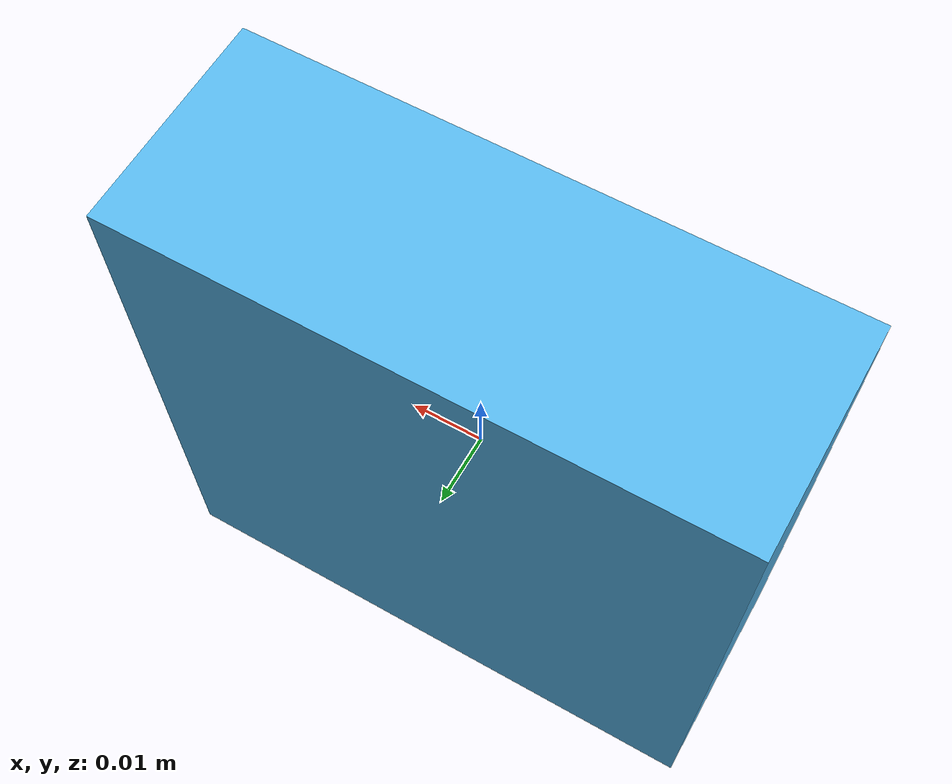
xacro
<robot name="cube" xmlns:xacro="http://ros.org/wiki/xacro">

    <xacro:property name="PI" value="3.1415926535897931" />
	<xacro:include filename="$(find robomax_description)/description/macros.xacro" />

    <link name="base"/>

    <link name="box_marker">
        <inertial>
            <origin xyz="0 0 0" rpy="0 0 0" />
            <mass value="0.1" />
            <xacro:box_inertia m="0.1" x="0.08" y="0.03" z="0.08" />
        </inertial>

        <visual>
            <origin xyz="0 0 0" rpy="0 0 0" />
            <geometry>
                <box size="0.08 0.03 0.08" />
            </geometry>
        </visual>

        <collision>
            <origin xyz="0 0 0" rpy="0 0 0" />
            <geometry>
                <box size="0.08 0.03 0.08" />
            </geometry>
        </collision>
    </link>

    <joint name="marker_joint" type="fixed">
        <origin xyz="0.0 0.0 0.0" rpy="0 0 0" />
        <parent link="base" />
        <child link="box_marker" />
    </joint>

    <gazebo reference="box_marker">
        <material>vrc/Tag1</material>
    </gazebo>

</robot>

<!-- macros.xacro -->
<robot xmlns:xacro="http://www.ros.org/wiki/xacro">
     <xacro:macro name="cylinder_inertia" params="m r h">
        <inertia  ixx="${m*(3*r*r+h*h)/12}" ixy = "0" ixz = "0"
                  iyy="${m*(3*r*r+h*h)/12}" iyz = "0"
                  izz="${m*r*r/2}" />
      </xacro:macro>

      <xacro:macro name="box_inertia" params="m x y z">
        <inertia  ixx="${m*(y*y+z*z)/12}" ixy = "0" ixz = "0"
                  iyy="${m*(x*x+z*z)/12}" iyz = "0"
                  izz="${m*(x*x+z*z)/12}" />
      </xacro:macro>

      <xacro:macro name="sphere_inertia" params="m r">
        <inertia  ixx="${2*m*r*r/5}" ixy = "0" ixz = "0"
                  iyy="${2*m*r*r/5}" iyz = "0"
                  izz="${2*m*r*r/5}" />
      </xacro:macro>

      <xacro:macro name="wheel" params="name x y z">
        <link name="${name}_wheel">
          <visual>
            <origin rpy="0 ${PI/2} 0" xyz="0.0 0.0 0.0"/>
                <material name="White">
                  <color rgba="${100/255} ${100/255} ${100/255} 1.0"/>
                </material>
            <geometry>
              <mesh filename="package://robomax_description/description/meshes/wheels.stl" scale="0.001 0.001 0.001"/>
            </geometry>
          </visual>
        <collision>
            <geometry>
              <mesh filename="package://robomax_description/description/meshes/wheels.stl" scale="0.001 0.001 0.001"/>
            </geometry>
            <origin rpy="0 ${PI/2} 0" xyz="0.0 0.0 0.0"/>
            <material name="White">
                  <color rgba="${30/255} ${30/255} ${30/255} 1.0"/>
              </material>
        </collision>
          <inertial>
              <mass value="0.2"/>
              <box_inertia m="0.2" x="0.05" y="0.03" z="0.05"/>
          </inertial>
      </link>

        <joint name="${name}_wheel_joint" type="continuous">
          <parent link="base_link"/>
          <child link="${name}_wheel"/>
          <origin xyz="${x} ${y} ${z}" rpy="0 0 ${PI/2}" />
          <limit effort="1000" velocity="0.2"/>
          <joint_properties damping="0.25" friction="1.0"/>
        </joint>

      </xacro:macro>

</robot>
